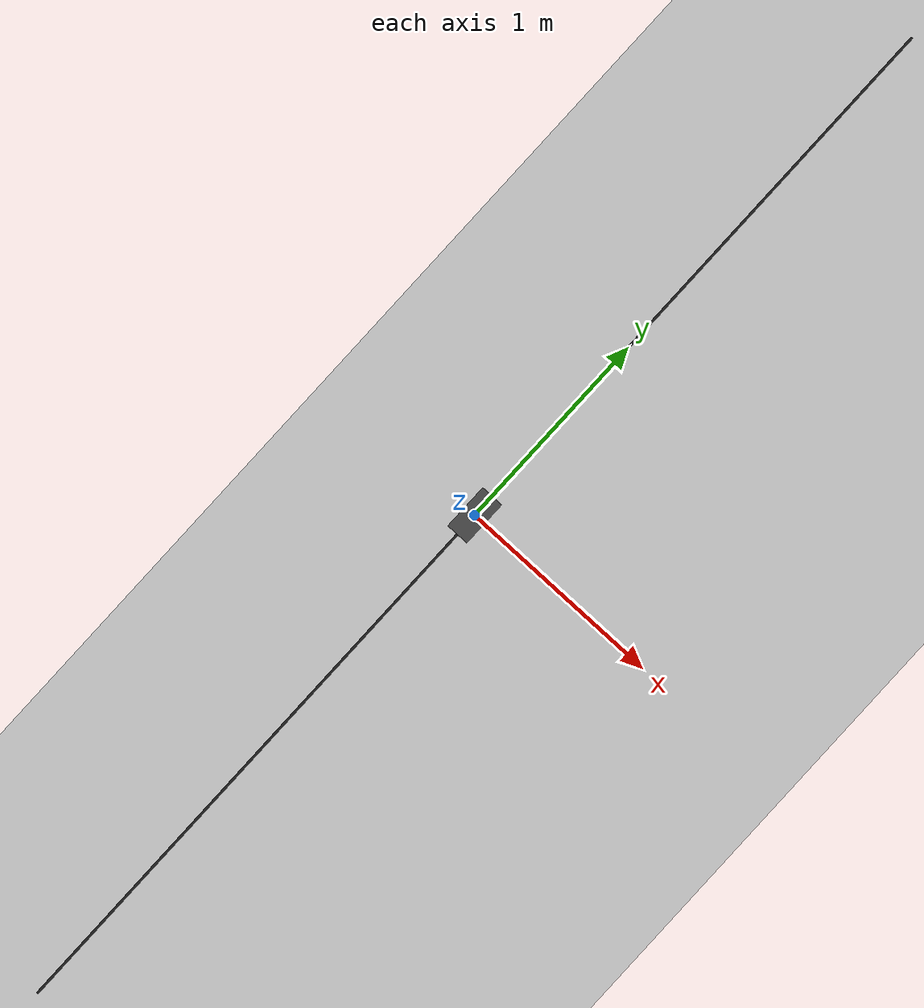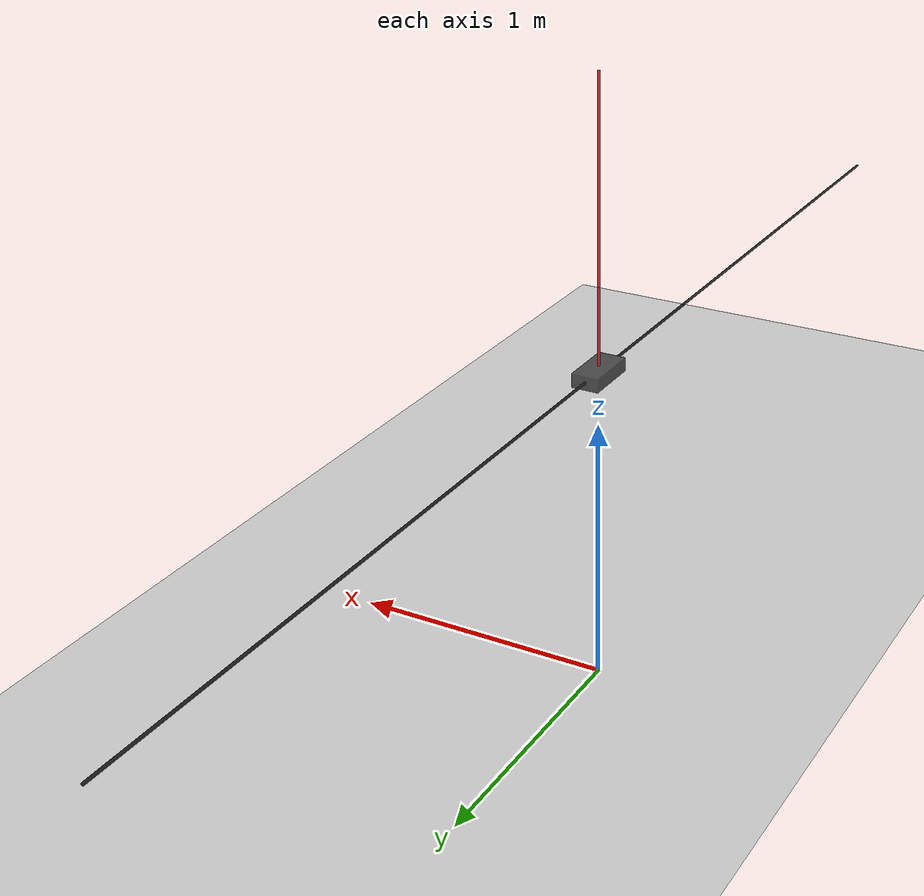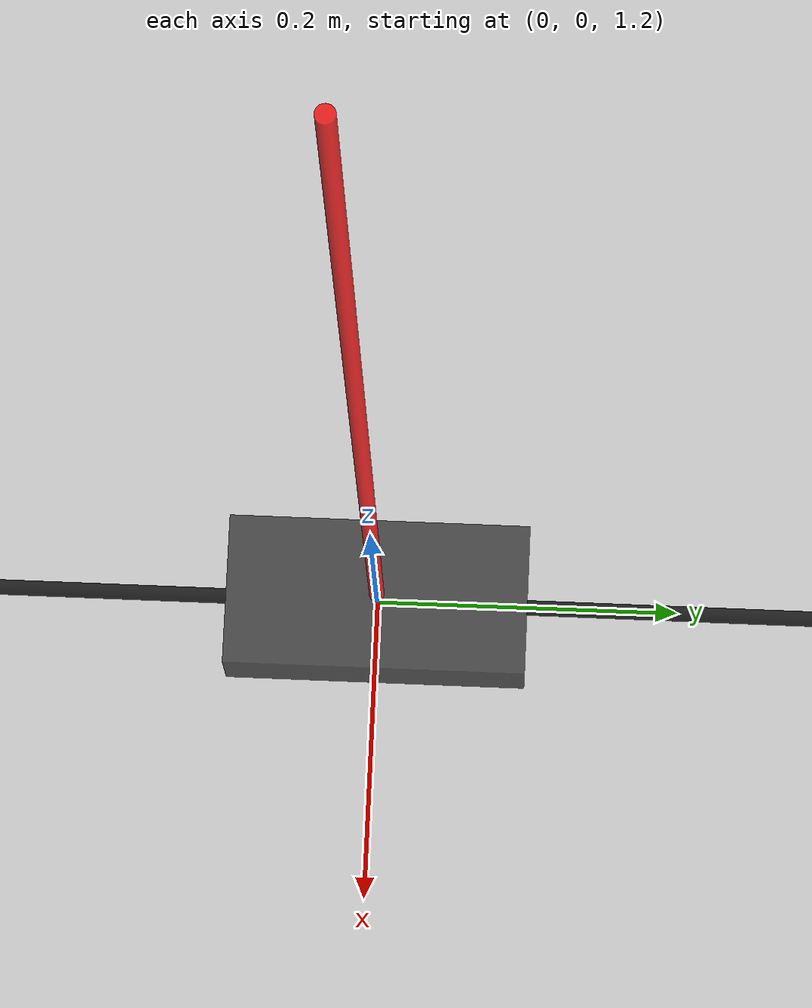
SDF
<?xml version="1.0" ?>
<sdf version="1.6">
    <world name="default">
        <physics default="true" type="dart">
            <!-- Run the simulation at real-time -->
            <real_time_factor>1</real_time_factor>
            <max_step_size>0.001</max_step_size>
        </physics>
        <plugin
                filename="libPhysicsSystem.so"
                name="scenario::plugins::gazebo::Physics">
        </plugin>
        <plugin
                filename="libignition-gazebo-user-commands-system.so"
                name="ignition::gazebo::systems::UserCommands">
        </plugin>
        <plugin
                filename="libignition-gazebo-scene-broadcaster-system.so"
                name="ignition::gazebo::systems::SceneBroadcaster">
        </plugin>
        <plugin
                filename="libignition-gazebo-contact-system.so"
                name="ignition::gazebo::systems::Contact">
        </plugin>

        <gui fullscreen="0">
            <!-- 3D scene -->
            <plugin filename="GzScene3D" name="3D View">
                <ignition-gui>
                    <title>3D View</title>
                    <property type="bool" key="showTitleBar">false</property>
                    <property type="string" key="state">docked</property>
                </ignition-gui>
                <engine>ogre</engine>
                <scene>scene</scene>
                <ambient_light>0.4 0.4 0.4</ambient_light>
                <background_color>0.8 0.8 0.8</background_color>
                <camera_pose>-6 0 6 0 0.5 0</camera_pose>
                <service>/world/default/scene/info</service>
                <pose_topic>/world/default/pose/info</pose_topic>
            </plugin>

            <!-- World control -->
            <plugin filename="WorldControl" name="World control">
                <ignition-gui>
                    <title>World control</title>
                    <property type="bool" key="showTitleBar">false</property>
                    <property type="bool" key="resizable">false</property>
                    <property type="double" key="height">72</property>
                    <property type="double" key="width">121</property>
                    <property type="double" key="z">1</property>
                    <property type="string" key="state">floating</property>
                    <anchors target="3D View">
                        <line own="left" target="left"/>
                        <line own="bottom" target="bottom"/>
                    </anchors>
                </ignition-gui>
                <play_pause>true</play_pause>
                <step>true</step>
                <start_paused>true</start_paused>
                <service>/world/default/control</service>
                <stats_topic>/world/default/stats</stats_topic>
            </plugin>

            <!-- World statistics -->
            <plugin filename="WorldStats" name="World stats">
                <ignition-gui>
                    <title>World stats</title>
                    <property type="bool" key="showTitleBar">false</property>
                    <property type="bool" key="resizable">false</property>
                    <property type="double" key="height">110</property>
                    <property type="double" key="width">290</property>
                    <property type="double" key="z">1</property>
                    <property type="string" key="state">floating</property>
                    <anchors target="3D View">
                        <line own="right" target="right"/>
                        <line own="bottom" target="bottom"/>
                    </anchors>
                </ignition-gui>
                <sim_time>true</sim_time>
                <real_time>true</real_time>
                <real_time_factor>true</real_time_factor>
                <iterations>true</iterations>
                <topic>/world/default/stats</topic>
            </plugin>
        </gui>

        <light type="directional" name="sun">
            <cast_shadows>true</cast_shadows>
            <pose>10 0 3 0 0 0</pose>
            <diffuse>0.8 0.8 0.8 1</diffuse>
            <specular>0.2 0.2 0.2 1</specular>
            <attenuation>
                <range>1000</range>
                <constant>0.9</constant>
                <linear>0.01</linear>
                <quadratic>0.001</quadratic>
            </attenuation>
            <direction>0.75 0.075 -0.667</direction>
        </light>

        <model name="ground_plane">
            <static>true</static>
            <link name="link">
                <collision name="collision">
                    <geometry>
                        <plane>
                            <normal>0 0 1</normal>
                        </plane>
                    </geometry>
                    <surface>
                        <friction>
                            <ode>
                                <mu>100</mu>
                                <mu2>50</mu2>
                            </ode>
                        </friction>
                    </surface>
                </collision>
                <visual name="visual">
                    <geometry>
                        <plane>
                            <normal>0 0 1</normal>
                            <size>100 100</size>
                        </plane>
                    </geometry>
                    <material>
                        <ambient>0.8 0.8 0.8 1</ambient>
                        <diffuse>0.8 0.8 0.8 1</diffuse>
                        <specular>0.8 0.8 0.8 1</specular>
                    </material>
                </visual>
            </link>
        </model>

        <include>
            <pose>0 0 0 0 0 0</pose>
            <uri>CartPole</uri>
        </include>

    </world>
</sdf>

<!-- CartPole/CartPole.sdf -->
<sdf version='1.6'>
  <model name='cartpole_xacro'>
    <link name='rail'>
      <pose>0 0 1.2 0 -0 0</pose>
      <inertial>
        <pose>0 0 0 1.5708 -0 0</pose>
        <mass>5</mass>
        <inertia>
          <ixx>10.4167</ixx>
          <ixy>0</ixy>
          <ixz>0</ixz>
          <iyy>10.4167</iyy>
          <iyz>0</iyz>
          <izz>6.25e-05</izz>
        </inertia>
      </inertial>
      <visual name='rail_visual'>
        <pose>0 0 0 1.5708 -0 0</pose>
        <geometry>
          <cylinder>
            <length>5</length>
            <radius>0.005</radius>
          </cylinder>
        </geometry>
        <material>
          <ambient>0 0 0 0.8</ambient>
          <diffuse>0 0 0 0.8</diffuse>
          <specular>0 0 0 0.8</specular>
          <emissive>0 0 0 0.8</emissive>
        </material>
      </visual>
      <gravity>1</gravity>
      <velocity_decay/>
    </link>
    <joint name='world_to_rail' type='fixed'>
      <child>rail</child>
      <parent>world</parent>
    </joint>
    <link name='cart'>
      <pose>0 0 1.2 0 -0 0</pose>
      <inertial>
        <pose>0 0 0 0 -0 0</pose>
        <mass>1</mass>
        <inertia>
          <ixx>0.00354167</ixx>
          <ixy>0</ixy>
          <ixz>0</ixz>
          <iyy>0.00104167</iyy>
          <iyz>0</iyz>
          <izz>0.00416667</izz>
        </inertia>
      </inertial>
      <collision name='cart_collision'>
        <pose>0 0 0 0 -0 0</pose>
        <geometry>
          <box>
            <size>0.1 0.2 0.05</size>
          </box>
        </geometry>
        <surface>
          <contact>
            <ode/>
          </contact>
          <friction>
            <ode/>
          </friction>
        </surface>
      </collision>
      <visual name='cart_visual'>
        <pose>0 0 0 0 -0 0</pose>
        <geometry>
          <box>
            <size>0.1 0.2 0.05</size>
          </box>
        </geometry>
        <material>
          <ambient>0.2 0.2 0.2 0.8</ambient>
          <diffuse>0.2 0.2 0.2 0.8</diffuse>
          <specular>0.2 0.2 0.2 0.8</specular>
          <emissive>0.2 0.2 0.2 0.8</emissive>
        </material>
      </visual>
      <gravity>1</gravity>
      <velocity_decay/>
    </link>
    <joint name='linear' type='prismatic'>
      <child>cart</child>
      <parent>rail</parent>
      <axis>
        <xyz>0 1 0</xyz>
        <limit>
          <lower>-2.4</lower>
          <upper>2.4</upper>
          <effort>500</effort>
          <velocity>10</velocity>
        </limit>
        <dynamics>
          <spring_reference>0</spring_reference>
          <spring_stiffness>0</spring_stiffness>
        </dynamics>
        <use_parent_model_frame>0</use_parent_model_frame>
      </axis>
    </joint>
    <link name='pole'>
      <pose>0 0 1.225 0 -0 0</pose>
      <inertial>
        <pose>0 0 0.5 0 -0 0</pose>
        <mass>0.1</mass>
        <inertia>
          <ixx>0.00833396</ixx>
          <ixy>0</ixy>
          <ixz>0</ixz>
          <iyy>0.00833396</iyy>
          <iyz>0</iyz>
          <izz>1.25e-06</izz>
        </inertia>
      </inertial>
      <collision name='pole_collision'>
        <pose>0 0 0.5 0 -0 0</pose>
        <geometry>
          <cylinder>
            <length>1</length>
            <radius>0.005</radius>
          </cylinder>
        </geometry>
        <surface>
          <contact>
            <ode/>
          </contact>
          <friction>
            <ode/>
          </friction>
        </surface>
      </collision>
      <visual name='pole_visual'>
        <pose>0 0 0.5 0 -0 0</pose>
        <geometry>
          <cylinder>
            <length>1</length>
            <radius>0.005</radius>
          </cylinder>
        </geometry>
        <material>
          <ambient>1 0 0 0.8</ambient>
          <diffuse>1 0 0 0.8</diffuse>
          <specular>1 0 0 0.8</specular>
          <emissive>1 0 0 0.8</emissive>
        </material>
      </visual>
      <gravity>1</gravity>
      <velocity_decay/>
    </link>
    <joint name='pivot' type='revolute'>
      <child>pole</child>
      <parent>cart</parent>
      <axis>
        <xyz>1 0 0</xyz>
        <limit>
          <lower>-1e+16</lower>
          <upper>1e+16</upper>
        </limit>
        <dynamics>
          <spring_reference>0</spring_reference>
          <spring_stiffness>0</spring_stiffness>
        </dynamics>
        <use_parent_model_frame>0</use_parent_model_frame>
      </axis>
    </joint>
  </model>
</sdf>
